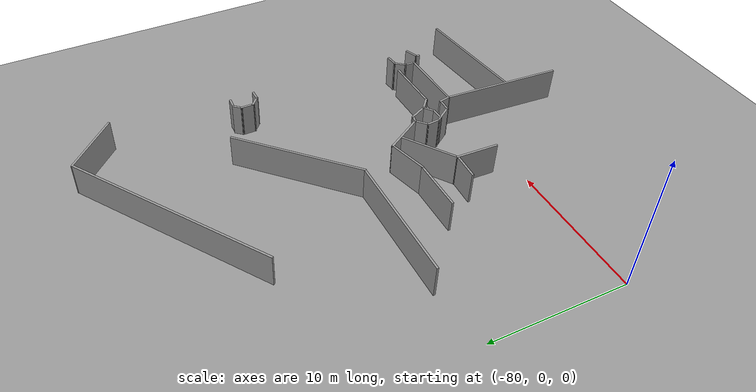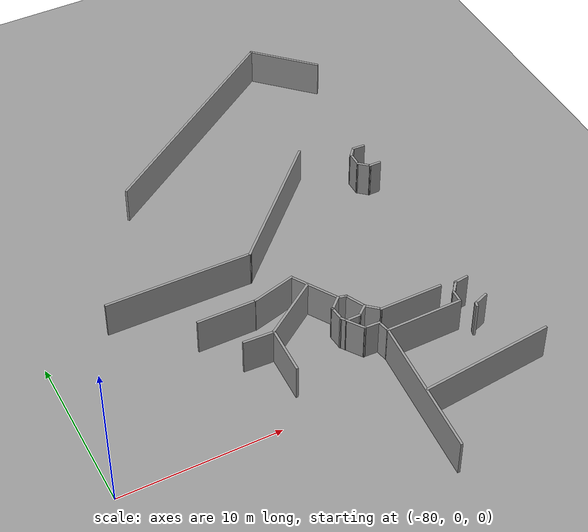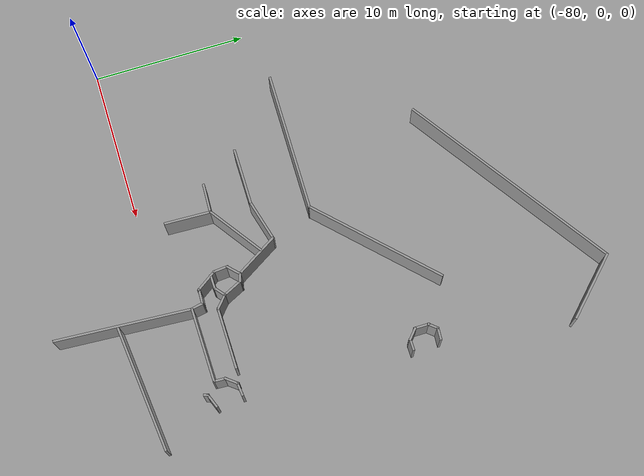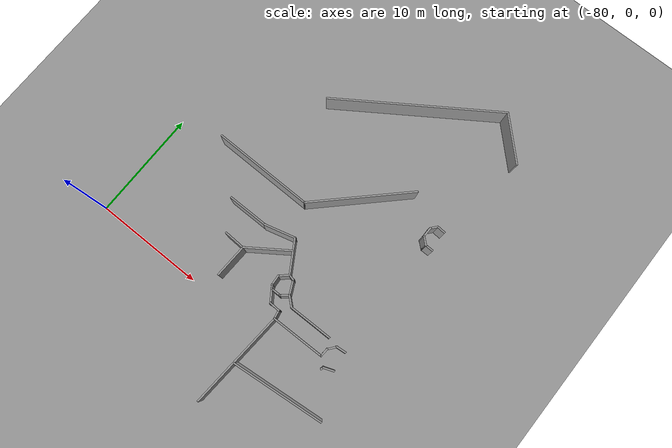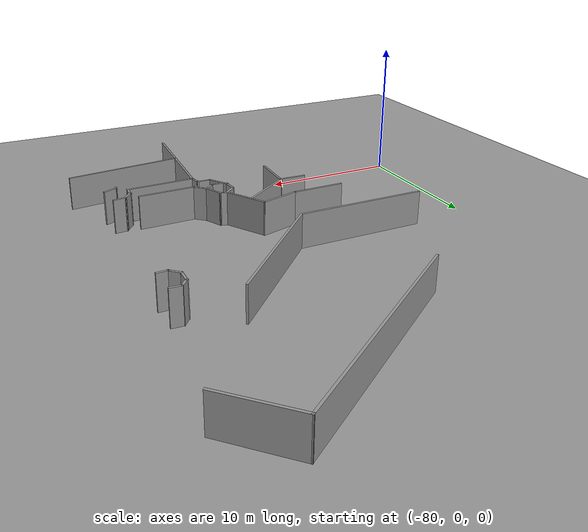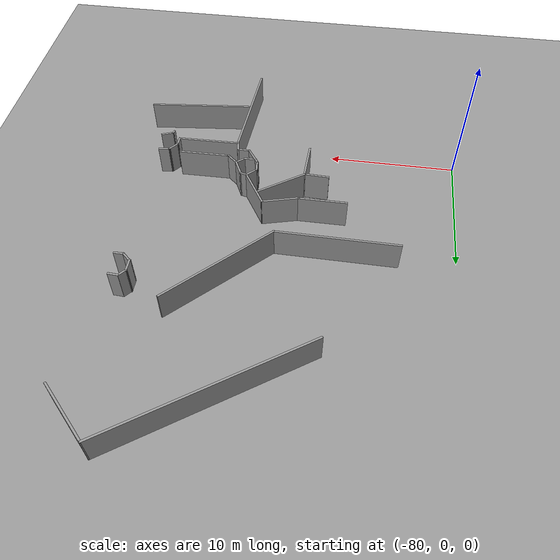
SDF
<sdf version="1.6">
 <world name="default">
  <model name="ground_plane">
   <static>1</static>
   <link name="link">
    <collision name="collision">
     <geometry><plane><normal>0 0 1</normal><size>100 100</size></plane></geometry>
     <surface><friction><ode><mu>100</mu><mu2>50</mu2></ode></friction></surface>
    </collision>
    <visual name="visual">
     <cast_shadows>0</cast_shadows>
     <geometry><plane><normal>0 0 1</normal><size>100 100</size></plane></geometry>
     <material>
      <script><uri>file://media/materials/scripts/gazebo.material</uri><name>Gazebo/Grey</name></script>
     </material>
    </visual>
   </link>
  </model>
  <model name="mall_new_reduce_size">
   <pose>-6.8092 7.5529 0 0 -0 0</pose>
   <link name="Wall_0">
    <collision name="Wall_0_Collision">
     <geometry><box><size>9.25048 0.15 2.5</size></box></geometry>
     <pose>0 0 1.25 0 -0 0</pose>
    </collision>
    <visual name="Wall_0_Visual">
     <pose>0 0 1.25 0 -0 0</pose>
     <geometry><box><size>9.25048 0.15 2.5</size></box></geometry>
     <material>
      <script><uri>file://media/materials/scripts/gazebo.material</uri><name>Gazebo/Grey</name></script>
      <ambient>1 1 1 1</ambient>
     </material>
     <meta><layer>0</layer></meta>
    </visual>
    <pose>-64.3372 3.2996 0 0 -0 -0.010225</pose>
   </link>
   <link name="Wall_10">
    <collision name="Wall_10_Collision">
     <geometry><box><size>15.64 0.15 2.5</size></box></geometry>
     <pose>0 0 1.25 0 -0 0</pose>
    </collision>
    <visual name="Wall_10_Visual">
     <pose>0 0 1.25 0 -0 0</pose>
     <geometry><box><size>15.64 0.15 2.5</size></box></geometry>
     <material>
      <script><uri>file://media/materials/scripts/gazebo.material</uri><name>Gazebo/Grey</name></script>
      <ambient>1 1 1 1</ambient>
     </material>
     <meta><layer>0</layer></meta>
    </visual>
    <pose>-57.6357 15.9234 0 0 -0 0.595213</pose>
   </link>
   <link name="Wall_11">
    <collision name="Wall_11_Collision">
     <geometry><box><size>4.74566 0.15 2.5</size></box></geometry>
     <pose>0 0 1.25 0 -0 0</pose>
    </collision>
    <visual name="Wall_11_Visual">
     <pose>0 0 1.25 0 -0 0</pose>
     <geometry><box><size>4.74566 0.15 2.5</size></box></geometry>
     <material>
      <script><uri>file://media/materials/scripts/gazebo.material</uri><name>Gazebo/Grey</name></script>
      <ambient>1 1 1 1</ambient>
     </material>
     <meta><layer>0</layer></meta>
    </visual>
    <pose>-49.5878 18.6511 0 0 -0 -0.779209</pose>
   </link>
   <link name="Wall_2">
    <collision name="Wall_2_Collision">
     <geometry><box><size>9.63799 0.15 2.5</size></box></geometry>
     <pose>0 0 1.25 0 -0 0</pose>
    </collision>
    <visual name="Wall_2_Visual">
     <pose>0 0 1.25 0 -0 0</pose>
     <geometry><box><size>9.63799 0.15 2.5</size></box></geometry>
     <material>
      <script><uri>file://media/materials/scripts/gazebo.material</uri><name>Gazebo/Grey</name></script>
      <ambient>1 1 1 1</ambient>
     </material>
     <meta><layer>0</layer></meta>
    </visual>
    <pose>-56.4049 6.57954 0 0 -0 -2.36452</pose>
   </link>
   <link name="Wall_391">
    <collision name="Wall_391_Collision">
     <geometry><box><size>0.801054 0.15 2.5</size></box></geometry>
     <pose>0 0 1.25 0 -0 0</pose>
    </collision>
    <visual name="Wall_391_Visual">
     <pose>0 0 1.25 0 -0 0</pose>
     <geometry><box><size>0.801054 0.15 2.5</size></box></geometry>
     <material>
      <script><uri>file://media/materials/scripts/gazebo.material</uri><name>Gazebo/Grey</name></script>
      <ambient>1 1 1 1</ambient>
     </material>
     <meta><layer>0</layer></meta>
    </visual>
    <pose>-49.5259 8.56782 0 0 -0 -0.059644</pose>
   </link>
   <link name="Wall_395">
    <collision name="Wall_395_Collision">
     <geometry><box><size>0.794353 0.15 2.5</size></box></geometry>
     <pose>0 0 1.25 0 -0 0</pose>
    </collision>
    <visual name="Wall_395_Visual">
     <pose>0 0 1.25 0 -0 0</pose>
     <geometry><box><size>0.794353 0.15 2.5</size></box></geometry>
     <material>
      <script><uri>file://media/materials/scripts/gazebo.material</uri><name>Gazebo/Grey</name></script>
      <ambient>1 1 1 1</ambient>
     </material>
     <meta><layer>0</layer></meta>
    </visual>
    <pose>-49.3956 6.7297 0 0 -0 3.14159</pose>
   </link>
   <link name="Wall_396">
    <collision name="Wall_396_Collision">
     <geometry><box><size>0.916096 0.15 2.5</size></box></geometry>
     <pose>0 0 1.25 0 -0 0</pose>
    </collision>
    <visual name="Wall_396_Visual">
     <pose>0 0 1.25 0 -0 0</pose>
     <geometry><box><size>0.916096 0.15 2.5</size></box></geometry>
     <material>
      <script><uri>file://media/materials/scripts/gazebo.material</uri><name>Gazebo/Grey</name></script>
      <ambient>1 1 1 1</ambient>
     </material>
     <meta><layer>0</layer></meta>
    </visual>
    <pose>-50.0103 6.98341 0 0 -0 2.41764</pose>
   </link>
   <link name="Wall_397">
    <collision name="Wall_397_Collision">
     <geometry><box><size>1.03328 0.15 2.5</size></box></geometry>
     <pose>0 0 1.25 0 -0 0</pose>
    </collision>
    <visual name="Wall_397_Visual">
     <pose>0 0 1.25 0 -0 0</pose>
     <geometry><box><size>1.03328 0.15 2.5</size></box></geometry>
     <material>
      <script><uri>file://media/materials/scripts/gazebo.material</uri><name>Gazebo/Grey</name></script>
      <ambient>1 1 1 1</ambient>
     </material>
     <meta><layer>0</layer></meta>
    </visual>
    <pose>-50.3056 7.67321 0 0 -0 1.56452</pose>
   </link>
   <link name="Wall_398">
    <collision name="Wall_398_Collision">
     <geometry><box><size>0.752241 0.15 2.5</size></box></geometry>
     <pose>0 0 1.25 0 -0 0</pose>
    </collision>
    <visual name="Wall_398_Visual">
     <pose>0 0 1.25 0 -0 0</pose>
     <geometry><box><size>0.752241 0.15 2.5</size></box></geometry>
     <material>
      <script><uri>file://media/materials/scripts/gazebo.material</uri><name>Gazebo/Grey</name></script>
      <ambient>1 1 1 1</ambient>
     </material>
     <meta><layer>0</layer></meta>
    </visual>
    <pose>-50.1044 8.34606 0 0 -0 0.875499</pose>
   </link>
   <link name="Wall_401">
    <collision name="Wall_401_Collision">
     <geometry><box><size>8.88079 0.15 2.5</size></box></geometry>
     <pose>0 0 1.25 0 -0 0</pose>
    </collision>
    <visual name="Wall_401_Visual">
     <pose>0 0 1.25 0 -0 0</pose>
     <geometry><box><size>8.88079 0.15 2.5</size></box></geometry>
     <material>
      <script><uri>file://media/materials/scripts/gazebo.material</uri><name>Gazebo/Grey</name></script>
      <ambient>1 1 1 1</ambient>
     </material>
     <meta><layer>0</layer></meta>
    </visual>
    <pose>-55.8835 -10.0474 0 0 -0 1.50433</pose>
   </link>
   <link name="Wall_402">
    <collision name="Wall_402_Collision">
     <geometry><box><size>0.897348 0.15 2.5</size></box></geometry>
     <pose>0 0 1.25 0 -0 0</pose>
    </collision>
    <visual name="Wall_402_Visual">
     <pose>0 0 1.25 0 -0 0</pose>
     <geometry><box><size>0.897348 0.15 2.5</size></box></geometry>
     <material>
      <script><uri>file://media/materials/scripts/gazebo.material</uri><name>Gazebo/Grey</name></script>
      <ambient>1 1 1 1</ambient>
     </material>
     <meta><layer>0</layer></meta>
    </visual>
    <pose>-55.6756 -5.31366 0 0 -0 1.76181</pose>
   </link>
   <link name="Wall_403">
    <collision name="Wall_403_Collision">
     <geometry><box><size>1.05205 0.15 2.5</size></box></geometry>
     <pose>0 0 1.25 0 -0 0</pose>
    </collision>
    <visual name="Wall_403_Visual">
     <pose>0 0 1.25 0 -0 0</pose>
     <geometry><box><size>1.05205 0.15 2.5</size></box></geometry>
     <material>
      <script><uri>file://media/materials/scripts/gazebo.material</uri><name>Gazebo/Grey</name></script>
      <ambient>1 1 1 1</ambient>
     </material>
     <meta><layer>0</layer></meta>
    </visual>
    <pose>-56.1975 -4.94175 0 0 -0 3.09776</pose>
   </link>
   <link name="Wall_404">
    <collision name="Wall_404_Collision">
     <geometry><box><size>1.6486 0.15 2.5</size></box></geometry>
     <pose>0 0 1.25 0 -0 0</pose>
    </collision>
    <visual name="Wall_404_Visual">
     <pose>0 0 1.25 0 -0 0</pose>
     <geometry><box><size>1.6486 0.15 2.5</size></box></geometry>
     <material>
      <script><uri>file://media/materials/scripts/gazebo.material</uri><name>Gazebo/Grey</name></script>
      <ambient>1 1 1 1</ambient>
     </material>
     <meta><layer>0</layer></meta>
    </visual>
    <pose>-57.0705 -4.31764 0 0 -0 2.16924</pose>
   </link>
   <link name="Wall_405">
    <collision name="Wall_405_Collision">
     <geometry><box><size>1.04728 0.15 2.5</size></box></geometry>
     <pose>0 0 1.25 0 -0 0</pose>
    </collision>
    <visual name="Wall_405_Visual">
     <pose>0 0 1.25 0 -0 0</pose>
     <geometry><box><size>1.04728 0.15 2.5</size></box></geometry>
     <material>
      <script><uri>file://media/materials/scripts/gazebo.material</uri><name>Gazebo/Grey</name></script>
      <ambient>1 1 1 1</ambient>
     </material>
     <meta><layer>0</layer></meta>
    </visual>
    <pose>-57.5295 -3.26618 0 0 -0 1.65307</pose>
   </link>
   <link name="Wall_406">
    <collision name="Wall_406_Collision">
     <geometry><box><size>1.06244 0.15 2.5</size></box></geometry>
     <pose>0 0 1.25 0 -0 0</pose>
    </collision>
    <visual name="Wall_406_Visual">
     <pose>0 0 1.25 0 -0 0</pose>
     <geometry><box><size>1.06244 0.15 2.5</size></box></geometry>
     <material>
      <script><uri>file://media/materials/scripts/gazebo.material</uri><name>Gazebo/Grey</name></script>
      <ambient>1 1 1 1</ambient>
     </material>
     <meta><layer>0</layer></meta>
    </visual>
    <pose>-57.2204 -2.50531 0 0 -0 0.758329</pose>
   </link>
   <link name="Wall_407">
    <collision name="Wall_407_Collision">
     <geometry><box><size>0.639841 0.15 2.5</size></box></geometry>
     <pose>0 0 1.25 0 -0 0</pose>
    </collision>
    <visual name="Wall_407_Visual">
     <pose>0 0 1.25 0 -0 0</pose>
     <geometry><box><size>0.639841 0.15 2.5</size></box></geometry>
     <material>
      <script><uri>file://media/materials/scripts/gazebo.material</uri><name>Gazebo/Grey</name></script>
      <ambient>1 1 1 1</ambient>
     </material>
     <meta><layer>0</layer></meta>
    </visual>
    <pose>-56.6521 -2.25288 0 0 -0 -0.253027</pose>
   </link>
   <link name="Wall_408">
    <collision name="Wall_408_Collision">
     <geometry><box><size>1.42721 0.15 2.5</size></box></geometry>
     <pose>0 0 1.25 0 -0 0</pose>
    </collision>
    <visual name="Wall_408_Visual">
     <pose>0 0 1.25 0 -0 0</pose>
     <geometry><box><size>1.42721 0.15 2.5</size></box></geometry>
     <material>
      <script><uri>file://media/materials/scripts/gazebo.material</uri><name>Gazebo/Grey</name></script>
      <ambient>1 1 1 1</ambient>
     </material>
     <meta><layer>0</layer></meta>
    </visual>
    <pose>-56.1375 -2.87459 0 0 -0 -1.12122</pose>
   </link>
   <link name="Wall_409">
    <collision name="Wall_409_Collision">
     <geometry><box><size>1.12501 0.15 2.5</size></box></geometry>
     <pose>0 0 1.25 0 -0 0</pose>
    </collision>
    <visual name="Wall_409_Visual">
     <pose>0 0 1.25 0 -0 0</pose>
     <geometry><box><size>1.12501 0.15 2.5</size></box></geometry>
     <material>
      <script><uri>file://media/materials/scripts/gazebo.material</uri><name>Gazebo/Grey</name></script>
      <ambient>1 1 1 1</ambient>
     </material>
     <meta><layer>0</layer></meta>
    </visual>
    <pose>-55.4949 -3.78767 0 0 -0 -0.724728</pose>
   </link>
   <link name="Wall_411">
    <collision name="Wall_411_Collision">
     <geometry><box><size>4.04883 0.15 2.5</size></box></geometry>
     <pose>0 0 1.25 0 -0 0</pose>
    </collision>
    <visual name="Wall_411_Visual">
     <pose>0 0 1.25 0 -0 0</pose>
     <geometry><box><size>4.04883 0.15 2.5</size></box></geometry>
     <material>
      <script><uri>file://media/materials/scripts/gazebo.material</uri><name>Gazebo/Grey</name></script>
      <ambient>1 1 1 1</ambient>
     </material>
     <meta><layer>0</layer></meta>
    </visual>
    <pose>-53.1806 -4.10085 0 0 -0 0.010101</pose>
   </link>
   <link name="Wall_417">
    <collision name="Wall_417_Collision">
     <geometry><box><size>0.945041 0.15 2.5</size></box></geometry>
     <pose>0 0 1.25 0 -0 0</pose>
    </collision>
    <visual name="Wall_417_Visual">
     <pose>0 0 1.25 0 -0 0</pose>
     <geometry><box><size>0.945041 0.15 2.5</size></box></geometry>
     <material>
      <script><uri>file://media/materials/scripts/gazebo.material</uri><name>Gazebo/Grey</name></script>
      <ambient>1 1 1 1</ambient>
     </material>
     <meta><layer>0</layer></meta>
    </visual>
    <pose>-56.1664 -3.71764 0 0 -0 -2.4512</pose>
   </link>
   <link name="Wall_418">
    <collision name="Wall_418_Collision">
     <geometry><box><size>0.981722 0.15 2.5</size></box></geometry>
     <pose>0 0 1.25 0 -0 0</pose>
    </collision>
    <visual name="Wall_418_Visual">
     <pose>0 0 1.25 0 -0 0</pose>
     <geometry><box><size>0.981722 0.15 2.5</size></box></geometry>
     <material>
      <script><uri>file://media/materials/scripts/gazebo.material</uri><name>Gazebo/Grey</name></script>
      <ambient>1 1 1 1</ambient>
     </material>
     <meta><layer>0</layer></meta>
    </visual>
    <pose>-56.8887 -3.96587 0 0 -0 -3.13011</pose>
   </link>
   <link name="Wall_422">
    <collision name="Wall_422_Collision">
     <geometry><box><size>3.74241 0.15 2.5</size></box></geometry>
     <pose>0 0 1.25 0 -0 0</pose>
    </collision>
    <visual name="Wall_422_Visual">
     <pose>0 0 1.25 0 -0 0</pose>
     <geometry><box><size>3.74241 0.15 2.5</size></box></geometry>
     <material>
      <script><uri>file://media/materials/scripts/gazebo.material</uri><name>Gazebo/Grey</name></script>
      <ambient>1 1 1 1</ambient>
     </material>
     <meta><layer>0</layer></meta>
    </visual>
    <pose>-62.9887 -0.242289 0 0 -0 0</pose>
   </link>
   <link name="Wall_423">
    <collision name="Wall_423_Collision">
     <geometry><box><size>2.9099 0.15 2.5</size></box></geometry>
     <pose>0 0 1.25 0 -0 0</pose>
    </collision>
    <visual name="Wall_423_Visual">
     <pose>0 0 1.25 0 -0 0</pose>
     <geometry><box><size>2.9099 0.15 2.5</size></box></geometry>
     <material>
      <script><uri>file://media/materials/scripts/gazebo.material</uri><name>Gazebo/Grey</name></script>
      <ambient>1 1 1 1</ambient>
     </material>
     <meta><layer>0</layer></meta>
    </visual>
    <pose>-59.8301 0.103872 0 0 -0 0.260825</pose>
   </link>
   <link name="Wall_424">
    <collision name="Wall_424_Collision">
     <geometry><box><size>3.24233 0.15 2.5</size></box></geometry>
     <pose>0 0 1.25 0 -0 0</pose>
    </collision>
    <visual name="Wall_424_Visual">
     <pose>0 0 1.25 0 -0 0</pose>
     <geometry><box><size>3.24233 0.15 2.5</size></box></geometry>
     <material>
      <script><uri>file://media/materials/scripts/gazebo.material</uri><name>Gazebo/Grey</name></script>
      <ambient>1 1 1 1</ambient>
     </material>
     <meta><layer>0</layer></meta>
    </visual>
    <pose>-57.693 -0.870766 0 0 -0 -1.02409</pose>
   </link>
   <link name="Wall_427">
    <collision name="Wall_427_Collision">
     <geometry><box><size>3.12833 0.15 2.5</size></box></geometry>
     <pose>0 0 1.25 0 -0 0</pose>
    </collision>
    <visual name="Wall_427_Visual">
     <pose>0 0 1.25 0 -0 0</pose>
     <geometry><box><size>3.12833 0.15 2.5</size></box></geometry>
     <material>
      <script><uri>file://media/materials/scripts/gazebo.material</uri><name>Gazebo/Grey</name></script>
      <ambient>1 1 1 1</ambient>
     </material>
     <meta><layer>0</layer></meta>
    </visual>
    <pose>-61.3717 -4.31042 0 0 -0 1.53172</pose>
   </link>
   <link name="Wall_428">
    <collision name="Wall_428_Collision">
     <geometry><box><size>4.18793 0.15 2.5</size></box></geometry>
     <pose>0 0 1.25 0 -0 0</pose>
    </collision>
    <visual name="Wall_428_Visual">
     <pose>0 0 1.25 0 -0 0</pose>
     <geometry><box><size>4.18793 0.15 2.5</size></box></geometry>
     <material>
      <script><uri>file://media/materials/scripts/gazebo.material</uri><name>Gazebo/Grey</name></script>
      <ambient>1 1 1 1</ambient>
     </material>
     <meta><layer>0</layer></meta>
    </visual>
    <pose>-59.6593 -1.6746 0 0 -0 0.610537</pose>
   </link>
   <link name="Wall_431">
    <collision name="Wall_431_Collision">
     <geometry><box><size>1.99069 0.15 2.5</size></box></geometry>
     <pose>0 0 1.25 0 -0 0</pose>
    </collision>
    <visual name="Wall_431_Visual">
     <pose>0 0 1.25 0 -0 0</pose>
     <geometry><box><size>1.99069 0.15 2.5</size></box></geometry>
     <material>
      <script><uri>file://media/materials/scripts/gazebo.material</uri><name>Gazebo/Grey</name></script>
      <ambient>1 1 1 1</ambient>
     </material>
     <meta><layer>0</layer></meta>
    </visual>
    <pose>-62.246 -2.82159 0 0 -0 -0.042156</pose>
   </link>
   <link name="Wall_434">
    <collision name="Wall_434_Collision">
     <geometry><box><size>8.39063 0.15 2.5</size></box></geometry>
     <pose>0 0 1.25 0 -0 0</pose>
    </collision>
    <visual name="Wall_434_Visual">
     <pose>0 0 1.25 0 -0 0</pose>
     <geometry><box><size>8.39063 0.15 2.5</size></box></geometry>
     <material>
      <script><uri>file://media/materials/scripts/gazebo.material</uri><name>Gazebo/Grey</name></script>
      <ambient>1 1 1 1</ambient>
     </material>
     <meta><layer>0</layer></meta>
    </visual>
    <pose>-51.7356 -9.99206 0 0 -0 0.100443</pose>
   </link>
   <link name="Wall_437">
    <collision name="Wall_437_Collision">
     <geometry><box><size>4.93367 0.15 2.5</size></box></geometry>
     <pose>0 0 1.25 0 -0 0</pose>
    </collision>
    <visual name="Wall_437_Visual">
     <pose>0 0 1.25 0 -0 0</pose>
     <geometry><box><size>4.93367 0.15 2.5</size></box></geometry>
     <material>
      <script><uri>file://media/materials/scripts/gazebo.material</uri><name>Gazebo/Grey</name></script>
      <ambient>1 1 1 1</ambient>
     </material>
     <meta><layer>0</layer></meta>
    </visual>
    <pose>-53.2131 -5.64679 0 0 -0 0.01411</pose>
   </link>
   <link name="Wall_438">
    <collision name="Wall_438_Collision">
     <geometry><box><size>0.856294 0.15 2.5</size></box></geometry>
     <pose>0 0 1.25 0 -0 0</pose>
    </collision>
    <visual name="Wall_438_Visual">
     <pose>0 0 1.25 0 -0 0</pose>
     <geometry><box><size>0.856294 0.15 2.5</size></box></geometry>
     <material>
      <script><uri>file://media/materials/scripts/gazebo.material</uri><name>Gazebo/Grey</name></script>
      <ambient>1 1 1 1</ambient>
     </material>
     <meta><layer>0</layer></meta>
    </visual>
    <pose>-50.8031 -5.24109 0 0 -0 1.51867</pose>
   </link>
   <link name="Wall_439">
    <collision name="Wall_439_Collision">
     <geometry><box><size>0.969231 0.15 2.5</size></box></geometry>
     <pose>0 0 1.25 0 -0 0</pose>
    </collision>
    <visual name="Wall_439_Visual">
     <pose>0 0 1.25 0 -0 0</pose>
     <geometry><box><size>0.969231 0.15 2.5</size></box></geometry>
     <material>
      <script><uri>file://media/materials/scripts/gazebo.material</uri><name>Gazebo/Grey</name></script>
      <ambient>1 1 1 1</ambient>
     </material>
     <meta><layer>0</layer></meta>
    </visual>
    <pose>-50.5308 -4.57665 0 0 -0 0.902175</pose>
   </link>
   <link name="Wall_440">
    <collision name="Wall_440_Collision">
     <geometry><box><size>0.946307 0.15 2.5</size></box></geometry>
     <pose>0 0 1.25 0 -0 0</pose>
    </collision>
    <visual name="Wall_440_Visual">
     <pose>0 0 1.25 0 -0 0</pose>
     <geometry><box><size>0.946307 0.15 2.5</size></box></geometry>
     <material>
      <script><uri>file://media/materials/scripts/gazebo.material</uri><name>Gazebo/Grey</name></script>
      <ambient>1 1 1 1</ambient>
     </material>
     <meta><layer>0</layer></meta>
    </visual>
    <pose>-49.8906 -4.222 0 0 -0 0.1079</pose>
   </link>
   <link name="Wall_444">
    <collision name="Wall_444_Collision">
     <geometry><box><size>1.0299 0.15 2.5</size></box></geometry>
     <pose>0 0 1.25 0 -0 0</pose>
    </collision>
    <visual name="Wall_444_Visual">
     <pose>0 0 1.25 0 -0 0</pose>
     <geometry><box><size>1.0299 0.15 2.5</size></box></geometry>
     <material>
      <script><uri>file://media/materials/scripts/gazebo.material</uri><name>Gazebo/Grey</name></script>
      <ambient>1 1 1 1</ambient>
     </material>
     <meta><layer>0</layer></meta>
    </visual>
    <pose>-49.6964 -6.0455 0 0 -0 -2.77375</pose>
   </link>
   <link name="Wall_445">
    <collision name="Wall_445_Collision">
     <geometry><box><size>0.341024 0.15 2.5</size></box></geometry>
     <pose>0 0 1.25 0 -0 0</pose>
    </collision>
    <visual name="Wall_445_Visual">
     <pose>0 0 1.25 0 -0 0</pose>
     <geometry><box><size>0.341024 0.15 2.5</size></box></geometry>
     <material>
      <script><uri>file://media/materials/scripts/gazebo.material</uri><name>Gazebo/Grey</name></script>
      <ambient>1 1 1 1</ambient>
     </material>
     <meta><layer>0</layer></meta>
    </visual>
    <pose>-50.1426 -6.30525 0 0 -0 -1.8466</pose>
   </link>
   <static>1</static>
  </model>
  <model name="ground_plane_0">
   <static>1</static>
   <link name="link">
    <collision name="collision">
     <geometry><plane><normal>0 0 1</normal><size>100 100</size></plane></geometry>
     <surface><friction><ode><mu>100</mu><mu2>50</mu2></ode></friction></surface>
    </collision>
    <visual name="visual">
     <cast_shadows>0</cast_shadows>
     <geometry><plane><normal>0 0 1</normal><size>100 100</size></plane></geometry>
     <material>
      <script><uri>file://media/materials/scripts/gazebo.material</uri><name>Gazebo/Grey</name></script>
     </material>
    </visual>
   </link>
   <pose>-74.6089 17.2033 0 0 -0 0</pose>
  </model>
 </world>
</sdf>
